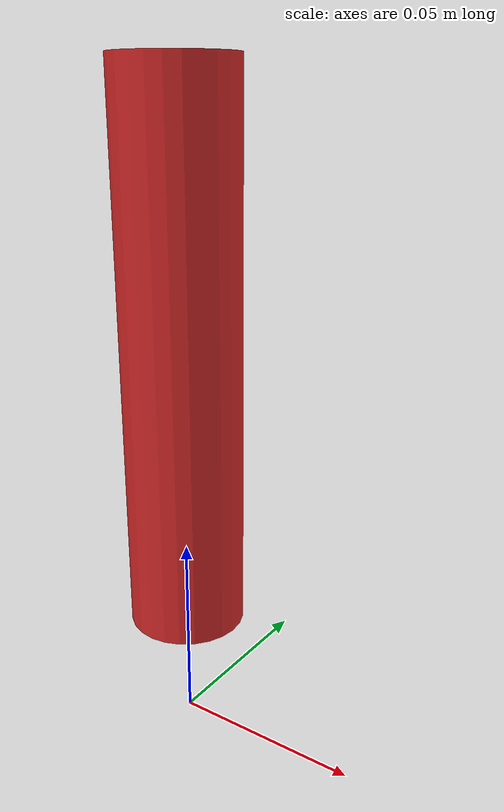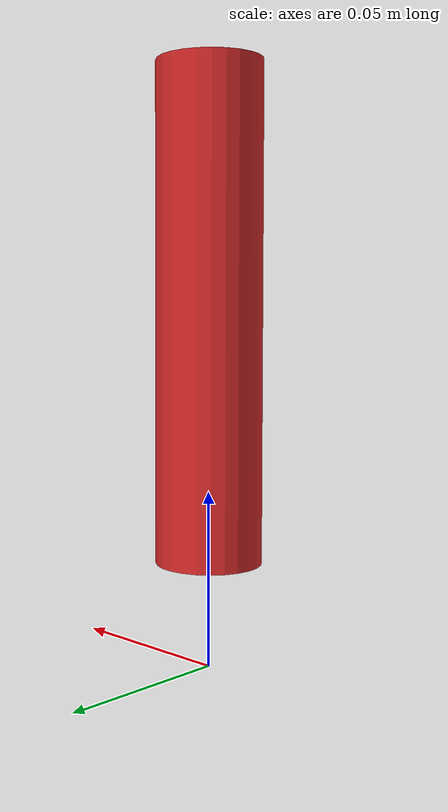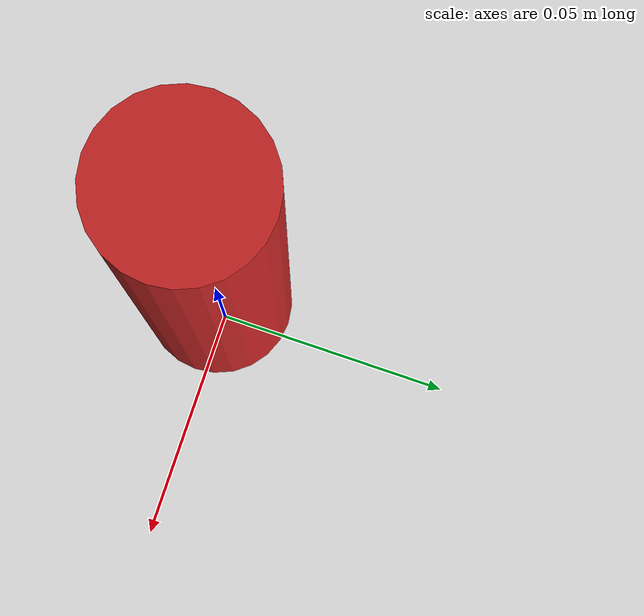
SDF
<?xml version="1.0"?>
<sdf version="1.7">

  <model name="pusher">
     <link name="cylinder_x_link">
      <inertial>
        <mass>1.0e-6</mass>
        <inertia>
          <ixx>1.0e-6</ixx>
          <ixy>0</ixy>
          <ixz>0</ixz>
          <iyy>1.0e-6</iyy>
          <iyz>0</iyz>
          <izz>1.0e-6</izz>
        </inertia>
      </inertial>
    </link>

    <link name="pusher">
      <inertial>
        <mass>0.1</mass>
        <inertia>
          <ixx>0.00016895833333333335</ixx>
          <ixy>0</ixy>
          <ixz>0</ixz>
          <iyy>0.00016895833333333335</iyy>
          <iyz>0</iyz>
          <izz>1.125e-05</izz>
        </inertia>
      </inertial>
      <pose>0 0 0.1 0 0 0</pose>

      <visual name="visual">
        <geometry>
          <cylinder>
            <radius> 0.015 </radius>
            <length> 0.14 </length>
          </cylinder>
        </geometry>
        <material>
          <diffuse> 0.80078125 0.1484375 0.1484375 1. </diffuse>
        </material>
      </visual>

      <collision name="collision">
        <geometry>
          <cylinder>
            <radius> 0.015 </radius>
            <length> 0.14 </length>
          </cylinder>
        </geometry>
        <drake:proximity_properties>
          <drake:compliant_hydroelastic/>
          <drake:hunt_crossley_dissipation>1.25</drake:hunt_crossley_dissipation>
          <drake:hydroelastic_modulus>1e5</drake:hydroelastic_modulus>
          <drake:mesh_resolution_hint>0.005</drake:mesh_resolution_hint>
          <drake:mu_dynamic>0.25</drake:mu_dynamic>
          <drake:mu_static>0.25</drake:mu_static>
        </drake:proximity_properties>
      </collision>
    </link>

    <joint name="x_slider" type="prismatic">
      <parent>world</parent>
      <child>cylinder_x_link</child>
      <axis>
        <xyz>1 0 0</xyz>
        <limit>
          <effort>100</effort>
        </limit>
      </axis>
    </joint>

    <joint name="y_slider" type="prismatic">
      <parent>cylinder_x_link</parent>
      <child>pusher</child>
      <axis>
        <xyz>0 1 0</xyz>
        <limit>
          <effort>100</effort>
        </limit>
      </axis>
    </joint>
  </model>
</sdf>
